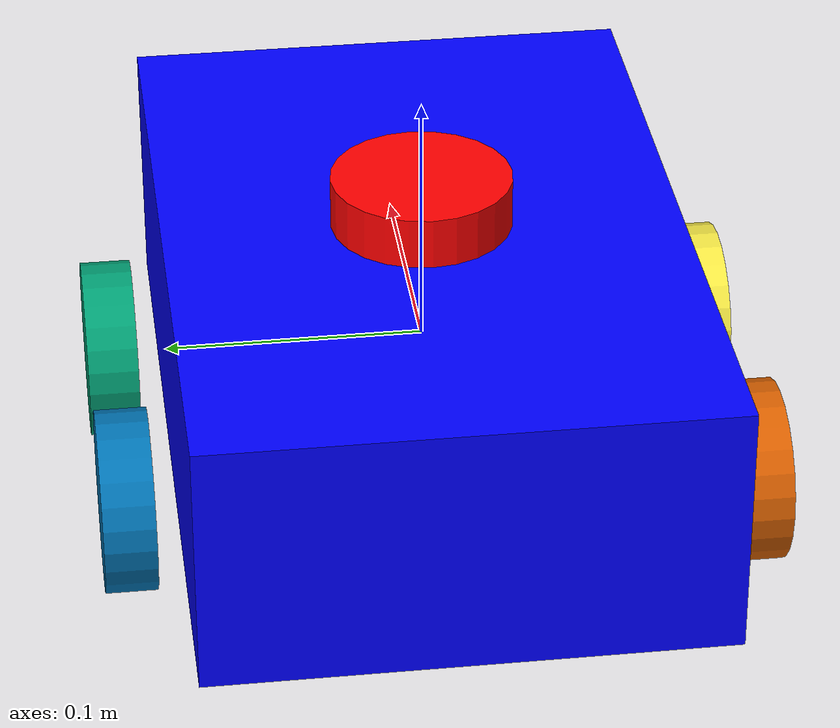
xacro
<?xml version='1.0'?>

<robot name="jetbot" xmlns:xacro="http://www.ros.org/wiki/xacro">

    <link name="base_footprint"/>

    <joint name="base_footprint_joint" type="fixed">
        <origin xyz="0 0 0.0" rpy="0 0 0" />
        <parent link="base_footprint"/>
        <child link="base_link"/>
    </joint>

    <link name="base_link">
        <inertial>
            <origin xyz="0.0 0.0 0.0" rpy="0.0 0.0 0.0"/>
            <mass value="5.0"/>
            <inertia ixx="0.0" ixy="0.0" ixz="0.0" iyy="0.0" iyz="0.0" izz="0.0"/>
        </inertial>
        <visual name="base_link_visual">
            <origin xyz="0.0 0.0 0.0" rpy="0.0 0.0 0.0"/>
            <geometry>
                <box size="0.3 0.2 0.1"/>
            </geometry>
            <material name="">
                <color rgba="0.0 0.0 1.0 1.0"/>
                <texture filename=""/>
            </material>
        </visual>
        <collision>
            <origin xyz="0.0 0.0 0.0" rpy="0.0 0.0 0.0"/>
            <geometry>
                <box size="0.4 0.2 0.1"/>
            </geometry>
        </collision>
    </link>

    <link name="front_left_wheel">
        <inertial>
            <origin xyz="0.0 0.0 0.0" rpy="0.0 1.5707 1.5707"/>
            <mass value="5.0"/>
            <inertia ixx="0.1" ixy="0.0" ixz="0.0" iyy="0.1" iyz="0.0" izz="0.1"/>
        </inertial>
        <visual name="left_wheel_visual">
            <origin xyz="0.0 0.0 0.0" rpy="0.0 0.0 0.0"/>
            <geometry>
                <cylinder radius="0.035" length="0.02"/>
            </geometry>
        </visual>
        <collision name='left_wheel_collision'>
            <origin xyz="0.0 0.0 0.0" rpy="0.0 0.0 0.0"/>
            <geometry>
                <cylinder radius="0.035" length="0.02"/>
            </geometry>
        </collision>
    </link>

    <joint name="front_left_wheel_joint" type="continuous">
        <origin xyz="0.06 0.12 -0.035" rpy="0.0 1.5705 1.5705"/>
        <parent link="base_link"/>
        <child link="front_left_wheel"/>
        <axis xyz="0.0 0.0 1.0"/>

    </joint>

    <link name="front_right_wheel">
        <inertial>
            <origin xyz="0.0 0.0 0.0" rpy="0.0 0.0 0.0"/>
            <mass value="5.0"/>
            <inertia ixx="0.1" ixy="0.0" ixz="0.0" iyy="0.1" iyz="0.0" izz="0.1"/>
        </inertial>
        <visual name="right_wheel_visual">
            <origin xyz="0.0 0.0 0.0" rpy="0.0 0.0 0.0"/>
            <geometry>
                <cylinder radius="0.035" length="0.02"/>
            </geometry>
        </visual>
        <collision name='right_wheel_collision'>
            <origin xyz="0.0 0.0 0.0" rpy="0.0 0.0 0.0"/>
            <geometry>
                <cylinder radius="0.035" length="0.02"/>
            </geometry>
        </collision>
    </link>

    <joint name="front_right_wheel_joint" type="continuous">
        <origin xyz="0.06 -0.12 -0.035" rpy="0.0 1.5705 1.5705"/>
        <parent link="base_link"/>
        <child link="front_right_wheel"/>
        <axis xyz="0.0 0.0 1.0"/>

    </joint>

    <link name="back_left_wheel">
        <inertial>
            <origin xyz="0.0 0.0 0.0" rpy="0.0 1.5707 1.5707"/>
            <mass value="5.0"/>
            <inertia ixx="0.1" ixy="0.0" ixz="0.0" iyy="0.1" iyz="0.0" izz="0.1"/>
        </inertial>
        <visual name="left_wheel_visual">
            <origin xyz="0.0 0.0 0.0" rpy="0.0 0.0 0.0"/>
            <geometry>
                <cylinder radius="0.035" length="0.02"/>
            </geometry>
        </visual>
        <collision name='left_wheel_collision'>
            <origin xyz="0.0 0.0 0.0" rpy="0.0 0.0 0.0"/>
            <geometry>
                <cylinder radius="0.035" length="0.02"/>
            </geometry>
        </collision>
    </link>

    <joint name="back_left_wheel_joint" type="continuous">
        <origin xyz="-0.05 0.12 -0.035" rpy="0.0 1.5705 1.5705"/>
        <parent link="base_link"/>
        <child link="back_left_wheel"/>
        <axis xyz="0.0 0.0 1.0"/>

    </joint>

    <link name="back_right_wheel">
        <inertial>
            <origin xyz="0.0 0.0 0.0" rpy="0.0 0.0 0.0"/>
            <mass value="5.0"/>
            <inertia ixx="0.1" ixy="0.0" ixz="0.0" iyy="0.1" iyz="0.0" izz="0.1"/>
        </inertial>
        <visual name="right_wheel_visual">
            <origin xyz="0.0 0.0 0.0" rpy="0.0 0.0 0.0"/>
            <geometry>
                <cylinder radius="0.035" length="0.02"/>
            </geometry>
        </visual>
        <collision name='right_wheel_collision'>
            <origin xyz="0.0 0.0 0.0" rpy="0.0 0.0 0.0"/>
            <geometry>
                <cylinder radius="0.035" length="0.02"/>
            </geometry>
        </collision>
    </link>

    <joint name="back_right_wheel_joint" type="continuous">
        <origin xyz="-0.06 -0.12 -0.035" rpy="0.0 1.5705 1.5705"/>
        <parent link="base_link"/>
        <child link="back_right_wheel"/>
        <axis xyz="0.0 0.0 1.0"/>

    </joint>

    <link name="laser">
        <inertial>
            <origin xyz="0.0 0.0 0.0" rpy="0.0 0.0 0.0"/>
            <mass value="0.1"/>
            <inertia ixx="0.0" ixy="0.0" ixz="0.0" iyy="0.0" iyz="0.0" izz="0.0"/>
        </inertial>
        <visual name="lidar_link_visual">
            <origin xyz="0.0 0.0 0.0" rpy="0.0 0.0 0.0"/>
            <geometry>
                <cylinder radius="0.035" length="0.02"/>
            </geometry>
            <material name="">
                <color rgba="1.0 0.0 0.0 1.0"/>
                <texture filename=""/>
            </material>
        </visual>
        <collision>
            <origin xyz="0.0 0.0 0.0" rpy="0.0 0.0 0.0"/>
            <geometry>
                <cylinder radius="0.035" length="0.02"/>
            </geometry>
        </collision>
    </link>

    <joint name="lidar_joint" type="fixed">
        <origin xyz="0.0 0.0 0.06" rpy="0 0.0 0"/>
        <parent link="base_link"/>
        <child link="laser"/>
    </joint>

    <link name="imu_link">
        <collision>
        <origin xyz="0 0 0.0" rpy="0 0 0"/>
        <geometry>
            <box size="0.02 0.02 0.02"/>
        </geometry>
        </collision>

        <visual>
        <origin xyz="0 0 0.0" rpy="0 0 0"/>
        <geometry>
            <box size="0.02 0.02 0.02"/>
        </geometry>
        <material name="orange"/>
        </visual>

        <inertial>
        <origin xyz="0 0 1" rpy="0 0 0"/>
        <mass value="1"/>
        <inertia
            ixx="1.0" ixy="0.0" ixz="0.0"
            iyy="1.0" iyz="0.0"
            izz="1.0"/>
        </inertial>
    </link>
    <joint name="imu_joint" type="fixed">
        <origin xyz="0.0 0.0 0.0" rpy="0.0 0.0 0.0"/>
        <parent link="base_link"/>
        <child link="imu_link"/>
    </joint>

</robot>
